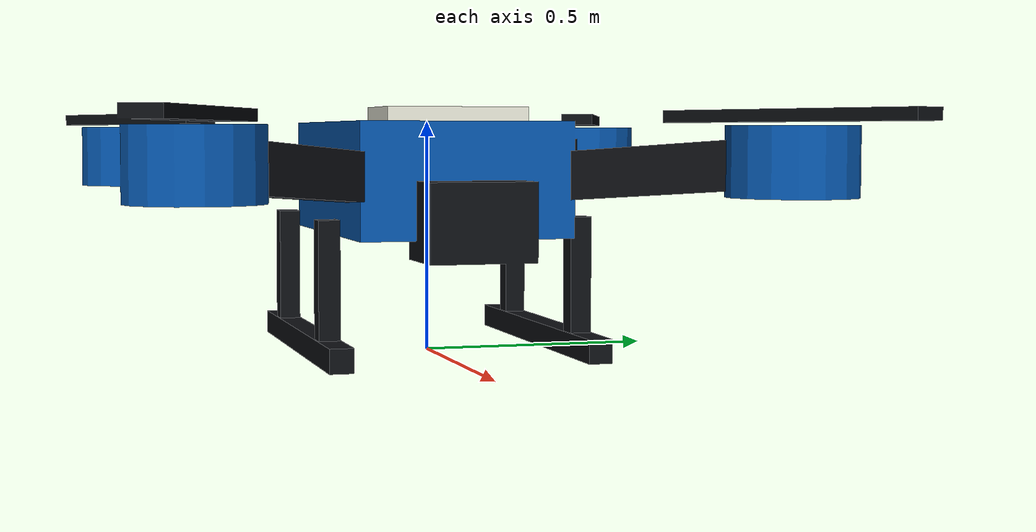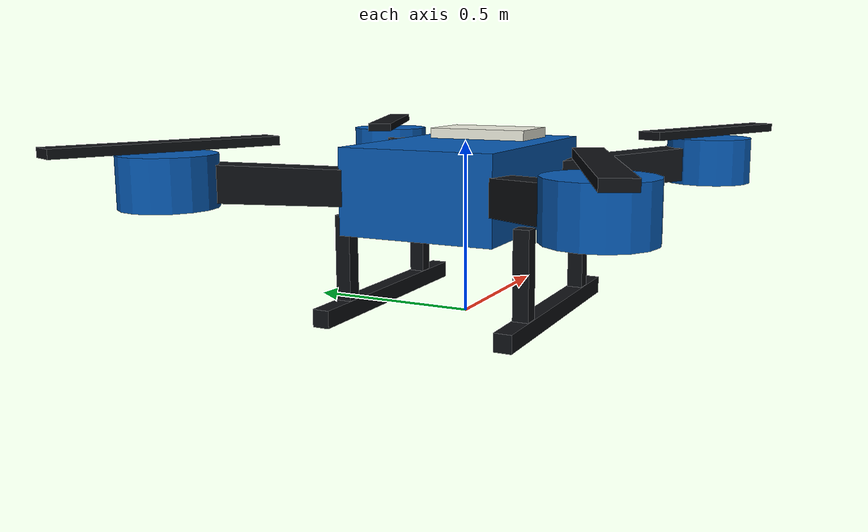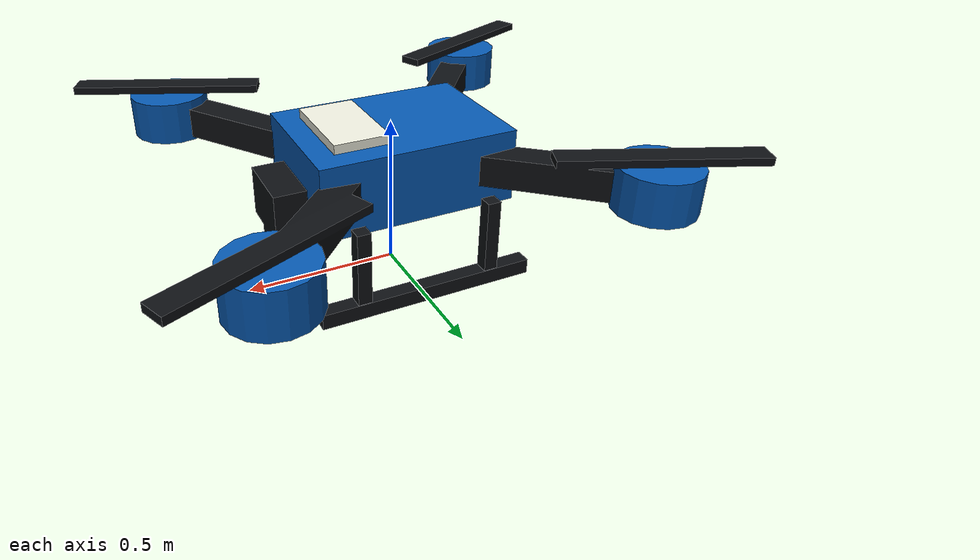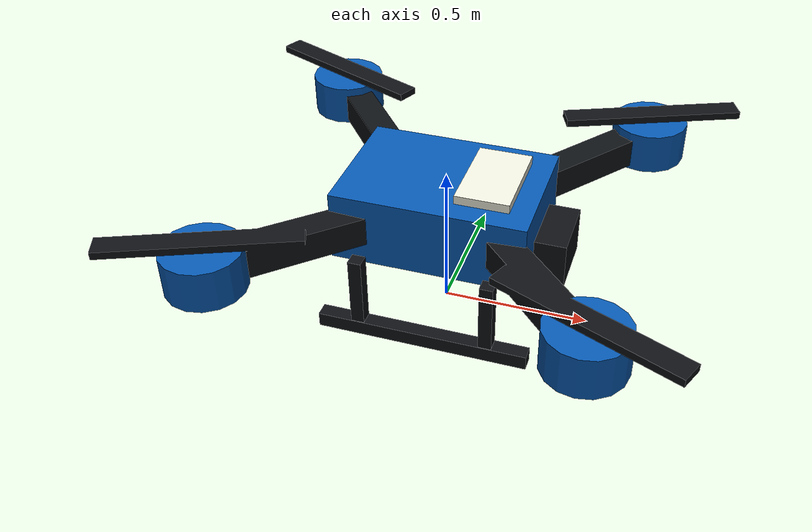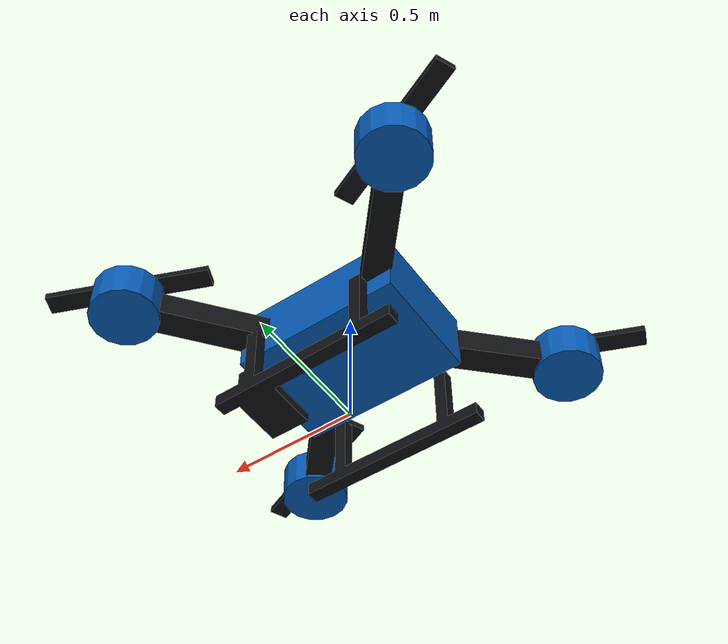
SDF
<?xml version='1.0' encoding='utf-8'?>
<sdf version="1.10">
  <model name="uav_1">
    <static>true</static>
    <link name="body">
      <visual name="blue">
        <geometry>
          <mesh>
            <uri>model://uav_1/meshes/blue.obj</uri>
          </mesh>
        </geometry>
        <material>
          <ambient>0.025 0.35 0.7 1</ambient>
          <diffuse>0.025 0.35 0.7 1</diffuse>
          <specular>.08 .08 .08 1</specular>
        </material>
      </visual>
      <visual name="dark">
        <geometry>
          <mesh>
            <uri>model://uav_1/meshes/dark.obj</uri>
          </mesh>
        </geometry>
        <material>
          <ambient>0.055 0.065 0.08 1</ambient>
          <diffuse>0.055 0.065 0.08 1</diffuse>
          <specular>.08 .08 .08 1</specular>
        </material>
      </visual>
      <visual name="white">
        <geometry>
          <mesh>
            <uri>model://uav_1/meshes/white.obj</uri>
          </mesh>
        </geometry>
        <material>
          <ambient>0.94 0.94 0.88 1</ambient>
          <diffuse>0.94 0.94 0.88 1</diffuse>
          <specular>.08 .08 .08 1</specular>
        </material>
      </visual>
      <collision name="placeholder_body">
        <pose>0 0 .36 0 0 0</pose>
        <geometry>
          <box>
            <size>.65 .45 .24</size>
          </box>
        </geometry>
      </collision>
    </link>
  </model>
</sdf>
